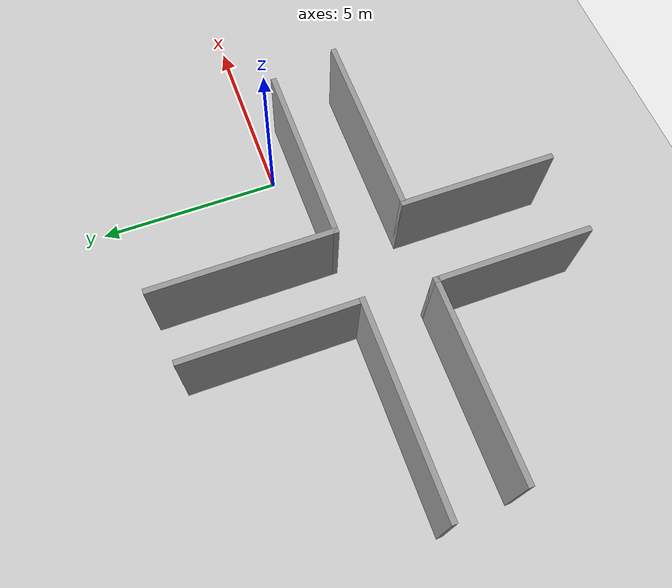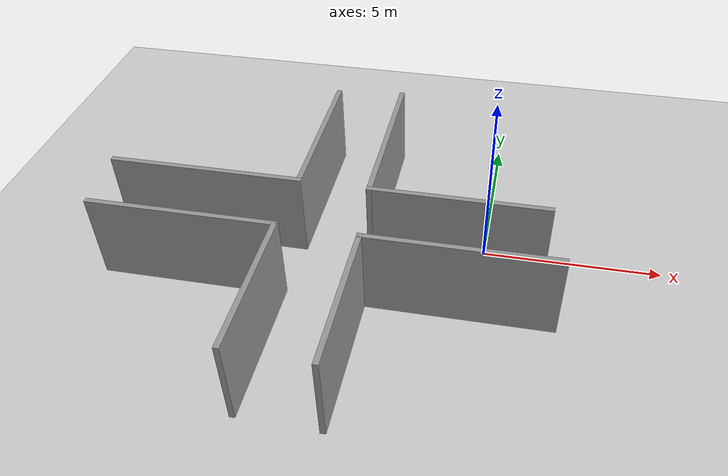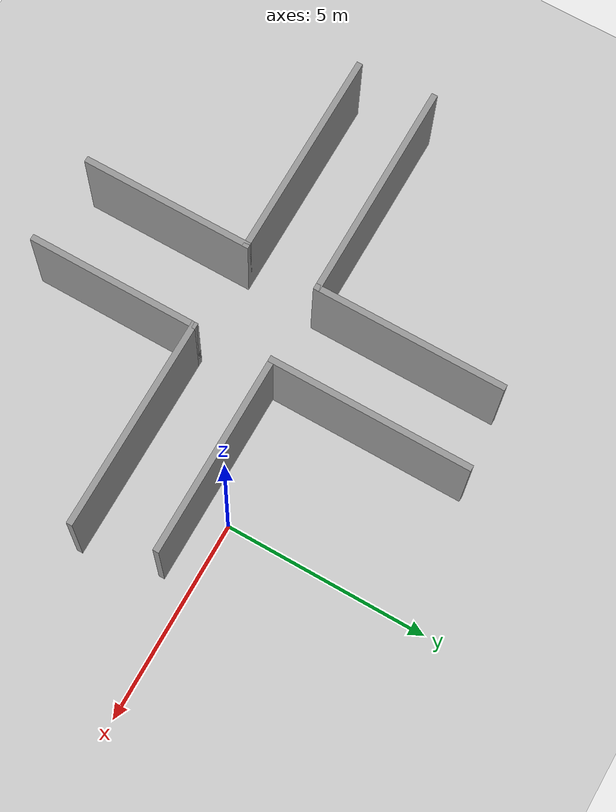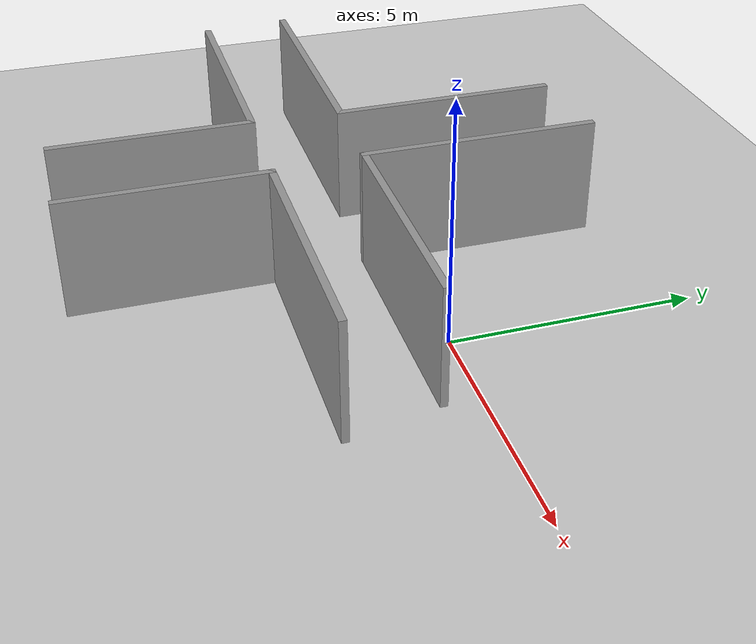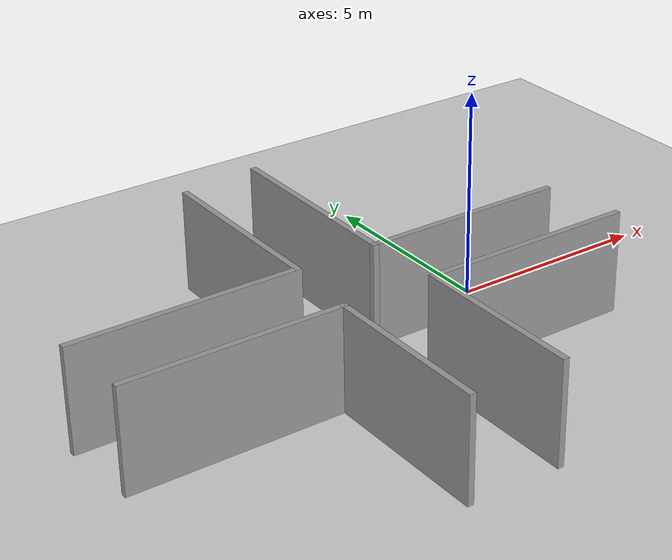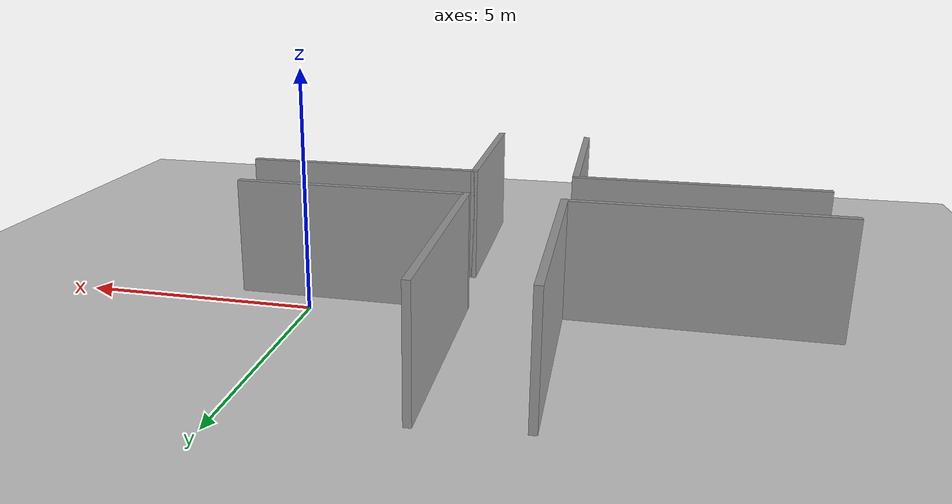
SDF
<sdf version="1.6">
 <world name="default">
  <light name="sun" type="directional">
   <pose>0 0 10 0 -0 0</pose>
   <diffuse>0.8 0.8 0.8 1</diffuse>
   <specular>0.1 0.1 0.1 1</specular>
   <attenuation>
    <range>1000</range>
    <constant>0.9</constant>
    <linear>0.01</linear>
    <quadratic>0.001</quadratic>
   </attenuation>
   <direction>-0.5 0.5 -1</direction>
  </light>
  <model name="ground_plane">
   <static>1</static>
   <link name="link">
    <collision name="collision">
     <geometry><plane><normal>0 0 1</normal><size>100 100</size></plane></geometry>
     <surface><friction><ode><mu>100</mu><mu2>50</mu2></ode></friction></surface>
    </collision>
    <visual name="visual">
     <cast_shadows>0</cast_shadows>
     <geometry><plane><normal>0 0 1</normal><size>100 100</size></plane></geometry>
     <material>
      <script><uri>file://media/materials/scripts/gazebo.material</uri><name>Gazebo/Grey</name></script>
     </material>
    </visual>
   </link>
  </model>
  <gravity>0 0 -9.8</gravity>
  <magnetic_field>6e-06 2.3e-05 -4.2e-05</magnetic_field>
  <atmosphere type="adiabatic"/>
  <physics name="default_physics" default="0" type="ode">
   <max_step_size>0.001</max_step_size>
   <real_time_factor>1</real_time_factor>
   <real_time_update_rate>1000</real_time_update_rate>
  </physics>
  <scene><ambient>0.4 0.4 0.4 1</ambient><background>0.7 0.7 0.7 1</background><shadows>1</shadows></scene>
  <spherical_coordinates>
   <surface_model>EARTH_WGS84</surface_model>
   <latitude_deg>0</latitude_deg>
   <longitude_deg>0</longitude_deg>
   <elevation>0</elevation>
   <heading_deg>0</heading_deg>
  </spherical_coordinates>
  <model name="four_way">
   <pose>-4.19325 -1.27589 0 0 -0 0</pose>
   <link name="Wall_1">
    <collision name="Wall_1_Collision">
     <geometry><box><size>5.25 0.15 2.5</size></box></geometry>
     <pose>0 0 1.25 0 -0 0</pose>
    </collision>
    <visual name="Wall_1_Visual">
     <pose>0 0 1.25 0 -0 0</pose>
     <geometry><box><size>5.25 0.15 2.5</size></box></geometry>
     <material>
      <script><uri>file://media/materials/scripts/gazebo.material</uri><name>Gazebo/Grey</name></script>
      <ambient>1 1 1 1</ambient>
     </material>
    </visual>
    <pose>-3.5831 -1.26923 0 0 -0 0</pose>
   </link>
   <link name="Wall_10">
    <collision name="Wall_10_Collision">
     <geometry><box><size>5 0.15 2.5</size></box></geometry>
     <pose>0 0 1.25 0 -0 0</pose>
    </collision>
    <visual name="Wall_10_Visual">
     <pose>0 0 1.25 0 -0 0</pose>
     <geometry><box><size>5 0.15 2.5</size></box></geometry>
     <material>
      <script><uri>file://media/materials/scripts/gazebo.material</uri><name>Gazebo/Grey</name></script>
      <ambient>1 1 1 1</ambient>
     </material>
    </visual>
    <pose>3.45199 0.569329 0 0 -0 3.14159</pose>
   </link>
   <link name="Wall_11">
    <collision name="Wall_11_Collision">
     <geometry><box><size>5 0.15 2.5</size></box></geometry>
     <pose>0 0 1.25 0 -0 0</pose>
    </collision>
    <visual name="Wall_11_Visual">
     <pose>0 0 1.25 0 -0 0</pose>
     <geometry><box><size>5 0.15 2.5</size></box></geometry>
     <material>
      <script><uri>file://media/materials/scripts/gazebo.material</uri><name>Gazebo/Grey</name></script>
      <ambient>1 1 1 1</ambient>
     </material>
    </visual>
    <pose>1.02699 2.99433 0 0 -0 1.5708</pose>
   </link>
   <link name="Wall_2">
    <collision name="Wall_2_Collision">
     <geometry><box><size>4.25 0.15 2.5</size></box></geometry>
     <pose>0 0 1.25 0 -0 0</pose>
    </collision>
    <visual name="Wall_2_Visual">
     <pose>0 0 1.25 0 -0 0</pose>
     <geometry><box><size>4.25 0.15 2.5</size></box></geometry>
     <material>
      <script><uri>file://media/materials/scripts/gazebo.material</uri><name>Gazebo/Grey</name></script>
      <ambient>1 1 1 1</ambient>
     </material>
    </visual>
    <pose>-1.0331 -3.31923 0 0 0 -1.5708</pose>
   </link>
   <link name="Wall_4">
    <collision name="Wall_4_Collision">
     <geometry><box><size>5.5 0.15 2.5</size></box></geometry>
     <pose>0 0 1.25 0 -0 0</pose>
    </collision>
    <visual name="Wall_4_Visual">
     <pose>0 0 1.25 0 -0 0</pose>
     <geometry><box><size>5.5 0.15 2.5</size></box></geometry>
     <material>
      <script><uri>file://media/materials/scripts/gazebo.material</uri><name>Gazebo/Grey</name></script>
      <ambient>1 1 1 1</ambient>
     </material>
    </visual>
    <pose>-3.61011 0.599575 0 0 -0 0</pose>
   </link>
   <link name="Wall_5">
    <collision name="Wall_5_Collision">
     <geometry><box><size>4.75 0.15 2.5</size></box></geometry>
     <pose>0 0 1.25 0 -0 0</pose>
    </collision>
    <visual name="Wall_5_Visual">
     <pose>0 0 1.25 0 -0 0</pose>
     <geometry><box><size>4.75 0.15 2.5</size></box></geometry>
     <material>
      <script><uri>file://media/materials/scripts/gazebo.material</uri><name>Gazebo/Grey</name></script>
      <ambient>1 1 1 1</ambient>
     </material>
    </visual>
    <pose>-0.935113 2.89958 0 0 -0 1.5708</pose>
   </link>
   <link name="Wall_7">
    <collision name="Wall_7_Collision">
     <geometry><box><size>4.25 0.15 2.5</size></box></geometry>
     <pose>0 0 1.25 0 -0 0</pose>
    </collision>
    <visual name="Wall_7_Visual">
     <pose>0 0 1.25 0 -0 0</pose>
     <geometry><box><size>4.25 0.15 2.5</size></box></geometry>
     <material>
      <script><uri>file://media/materials/scripts/gazebo.material</uri><name>Gazebo/Grey</name></script>
      <ambient>1 1 1 1</ambient>
     </material>
    </visual>
    <pose>1.18511 -3.36933 0 0 -0 1.5708</pose>
   </link>
   <link name="Wall_8">
    <collision name="Wall_8_Collision">
     <geometry><box><size>5.25 0.15 2.5</size></box></geometry>
     <pose>0 0 1.25 0 -0 0</pose>
    </collision>
    <visual name="Wall_8_Visual">
     <pose>0 0 1.25 0 -0 0</pose>
     <geometry><box><size>5.25 0.15 2.5</size></box></geometry>
     <material>
      <script><uri>file://media/materials/scripts/gazebo.material</uri><name>Gazebo/Grey</name></script>
      <ambient>1 1 1 1</ambient>
     </material>
    </visual>
    <pose>3.73511 -1.31933 0 0 -0 0</pose>
   </link>
   <static>1</static>
  </model>
 </world>
</sdf>
